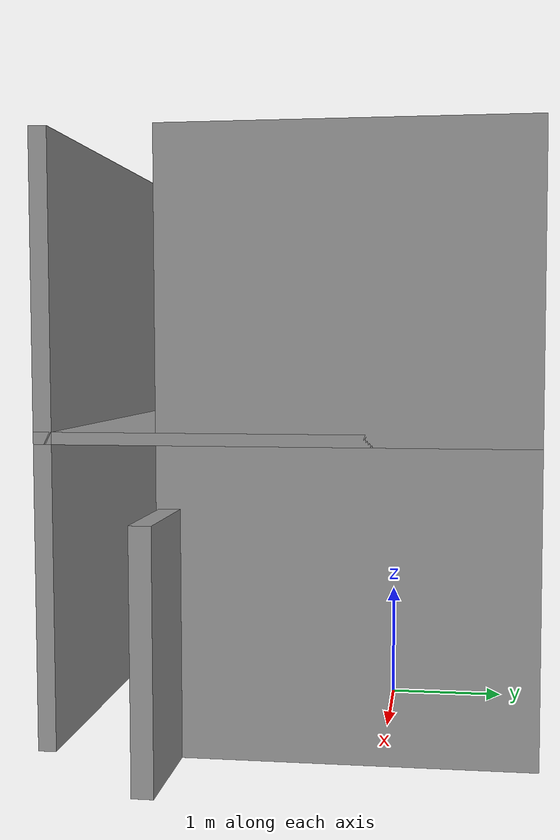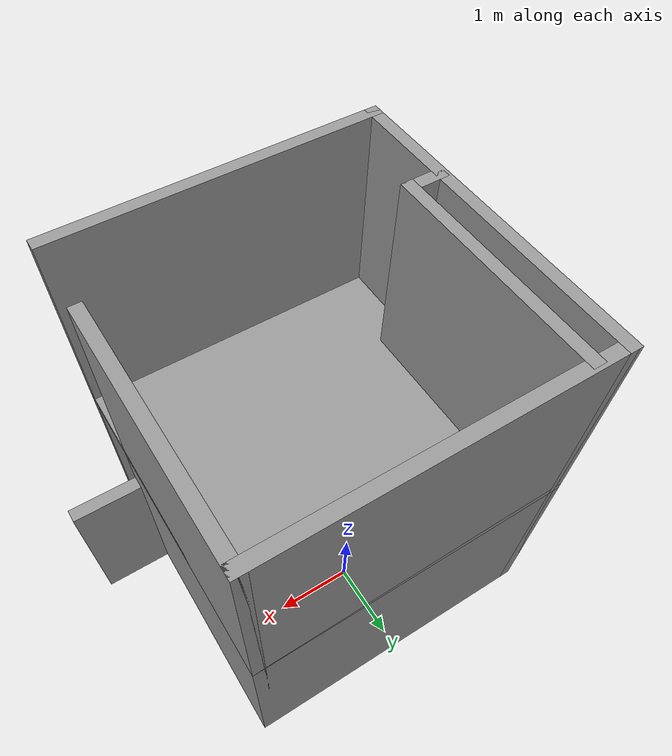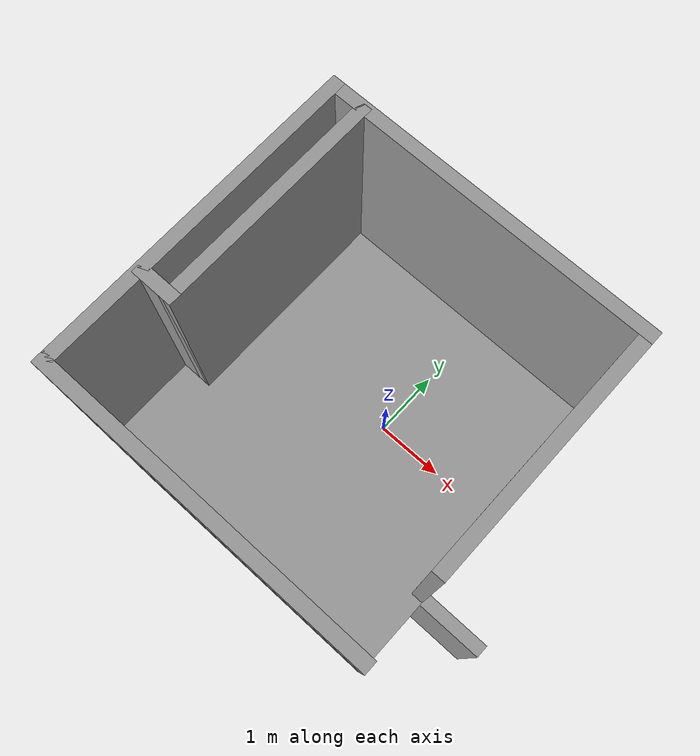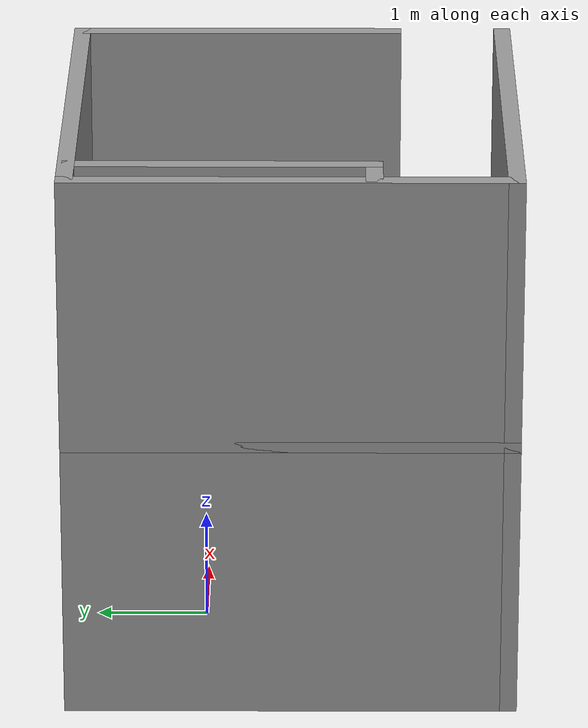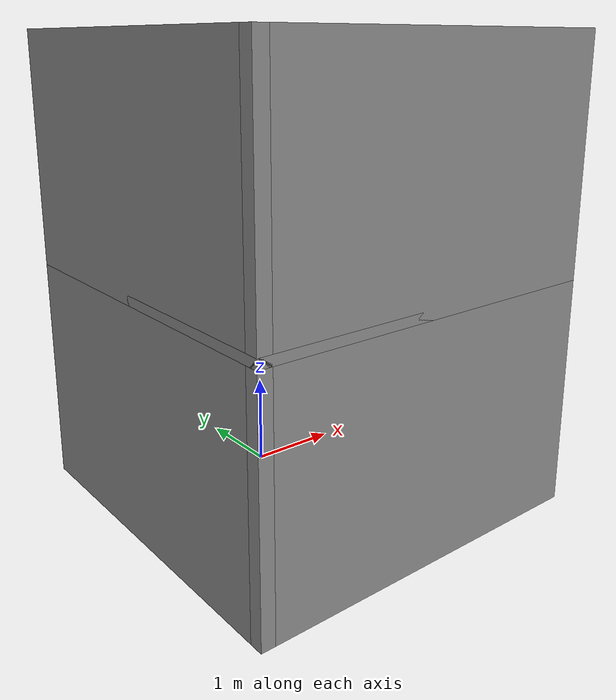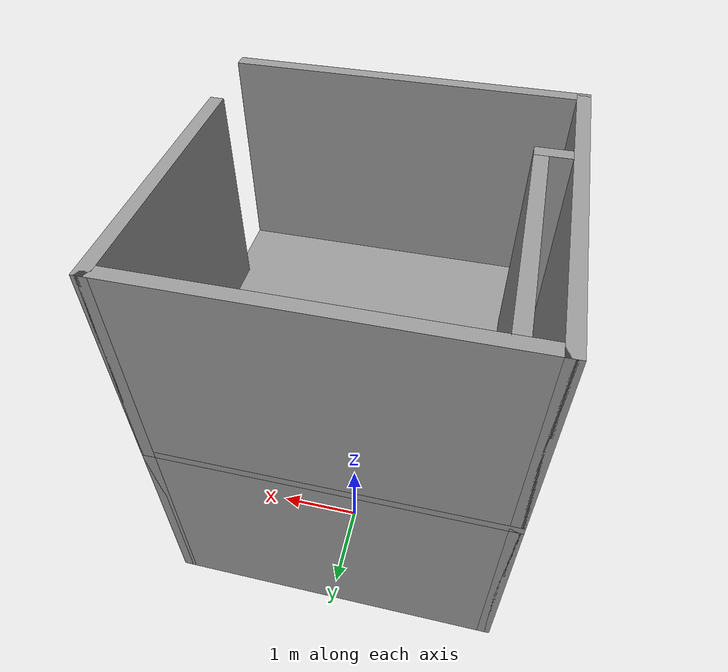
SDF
<?xml version='1.0'?>
<sdf version='1.6'>
  <model name='room-1'>
    <pose frame=''>0.005 -0.773696 0 0 -0 0</pose>
    <link name='Door_0'>
      <collision name='Door_0_Collision'>
        <geometry>
          <box>
            <size>0.9 0.17 2</size>
          </box>
        </geometry>
        <pose frame=''>0 0 1 0 -0 0</pose>
      </collision>
      <visual name='Door_0_Visual'>
        <pose frame=''>0 0 1 0 -0 0</pose>
        <geometry>
          <box>
            <size>0.9 0.17 2</size>
          </box>
        </geometry>
        <material>
          <script>
            <uri>file://media/materials/scripts/gazebo.material</uri>
            <name>Gazebo/Grey</name>
          </script>
        </material>
      </visual>
      <pose frame=''>2.42861 -0.890006 0 0 -0 0</pose>
    </link>
    <link name='Floor_0'>
      <collision name='Floor_0_Collision'>
        <geometry>
          <box>
            <size>4 4 0.1</size>
          </box>
        </geometry>
        <pose frame=''>0 0 0.05 0 -0 0</pose>
      </collision>
      <visual name='Floor_0_Visual'>
        <pose frame=''>0 0 0.05 0 -0 0</pose>
        <geometry>
          <box>
            <size>4 4 0.1</size>
          </box>
        </geometry>
        <material>
          <script>
            <uri>file://media/materials/scripts/gazebo.material</uri>
            <name>Gazebo/Grey</name>
          </script>
          <ambient>1 1 1 1</ambient>
        </material>
      </visual>
      <pose frame=''>0 0 2.5 0 -0 0</pose>
    </link>
    <link name='Wall_10'>
      <collision name='Wall_10_Collision'>
        <geometry>
          <box>
            <size>3 0.15 2.5</size>
          </box>
        </geometry>
        <pose frame=''>0 0 1.25 0 -0 0</pose>
      </collision>
      <visual name='Wall_10_Visual'>
        <pose frame=''>0 0 1.25 0 -0 0</pose>
        <geometry>
          <box>
            <size>3 0.15 2.5</size>
          </box>
        </geometry>
        <material>
          <script>
            <uri>file://media/materials/scripts/gazebo.material</uri>
            <name>Gazebo/Grey</name>
          </script>
          <ambient>1 1 1 1</ambient>
        </material>
      </visual>
      <pose frame=''>1.925 0.5 0 0 0 -1.5708</pose>
    </link>
    <link name='Wall_12'>
      <collision name='Wall_12_Collision'>
        <geometry>
          <box>
            <size>4 0.15 2.5</size>
          </box>
        </geometry>
        <pose frame=''>0 0 1.25 0 -0 0</pose>
      </collision>
      <visual name='Wall_12_Visual'>
        <pose frame=''>0 0 1.25 0 -0 0</pose>
        <geometry>
          <box>
            <size>4 0.15 2.5</size>
          </box>
        </geometry>
        <material>
          <script>
            <uri>file://media/materials/scripts/gazebo.material</uri>
            <name>Gazebo/Grey</name>
          </script>
          <ambient>1 1 1 1</ambient>
        </material>
      </visual>
      <pose frame=''>0 -1.925 2.5 0 -0 3.14159</pose>
    </link>
    <link name='Wall_13'>
      <collision name='Wall_13_Collision'>
        <geometry>
          <box>
            <size>4 0.15 2.5</size>
          </box>
        </geometry>
        <pose frame=''>0 0 1.25 0 -0 0</pose>
      </collision>
      <visual name='Wall_13_Visual'>
        <pose frame=''>0 0 1.25 0 -0 0</pose>
        <geometry>
          <box>
            <size>4 0.15 2.5</size>
          </box>
        </geometry>
        <material>
          <script>
            <uri>file://media/materials/scripts/gazebo.material</uri>
            <name>Gazebo/Grey</name>
          </script>
          <ambient>1 1 1 1</ambient>
        </material>
      </visual>
      <pose frame=''>-1.925 0 2.5 0 -0 1.5708</pose>
    </link>
    <link name='Wall_14'>
      <collision name='Wall_14_Collision'>
        <geometry>
          <box>
            <size>4 0.15 2.5</size>
          </box>
        </geometry>
        <pose frame=''>0 0 1.25 0 -0 0</pose>
      </collision>
      <visual name='Wall_14_Visual'>
        <pose frame=''>0 0 1.25 0 -0 0</pose>
        <geometry>
          <box>
            <size>4 0.15 2.5</size>
          </box>
        </geometry>
        <material>
          <script>
            <uri>file://media/materials/scripts/gazebo.material</uri>
            <name>Gazebo/Grey</name>
          </script>
          <ambient>1 1 1 1</ambient>
        </material>
      </visual>
      <pose frame=''>0 1.925 2.5 0 -0 0</pose>
    </link>
    <link name='Wall_15'>
      <collision name='Wall_15_Collision'>
        <geometry>
          <box>
            <size>3 0.15 2.5</size>
          </box>
        </geometry>
        <pose frame=''>0 0 1.25 0 -0 0</pose>
      </collision>
      <visual name='Wall_15_Visual'>
        <pose frame=''>0 0 1.25 0 -0 0</pose>
        <geometry>
          <box>
            <size>3 0.15 2.5</size>
          </box>
        </geometry>
        <material>
          <script>
            <uri>file://media/materials/scripts/gazebo.material</uri>
            <name>Gazebo/Grey</name>
          </script>
          <ambient>1 1 1 1</ambient>
        </material>
      </visual>
      <pose frame=''>1.925 0.5 2.5 0 0 -1.5708</pose>
    </link>
    <link name='Wall_17'>
      <collision name='Wall_17_Collision'>
        <geometry>
          <box>
            <size>0.5 0.15 2.5</size>
          </box>
        </geometry>
        <pose frame=''>0 0 1.25 0 -0 0</pose>
      </collision>
      <visual name='Wall_17_Visual'>
        <pose frame=''>0 0 1.25 0 -0 0</pose>
        <geometry>
          <box>
            <size>0.5 0.15 2.5</size>
          </box>
        </geometry>
        <material>
          <script>
            <uri>file://media/materials/scripts/gazebo.material</uri>
            <name>Gazebo/Grey</name>
          </script>
          <ambient>1 1 1 1</ambient>
        </material>
      </visual>
      <pose frame=''>-1.71643 -0.715105 2.5 0 -0 0</pose>
    </link>
    <link name='Wall_18'>
      <collision name='Wall_18_Collision'>
        <geometry>
          <box>
            <size>2.75 0.15 2.5</size>
          </box>
        </geometry>
        <pose frame=''>0 0 1.25 0 -0 0</pose>
      </collision>
      <visual name='Wall_18_Visual'>
        <pose frame=''>0 0 1.25 0 -0 0</pose>
        <geometry>
          <box>
            <size>2.75 0.15 2.5</size>
          </box>
        </geometry>
        <material>
          <script>
            <uri>file://media/materials/scripts/gazebo.material</uri>
            <name>Gazebo/Grey</name>
          </script>
          <ambient>1 1 1 1</ambient>
        </material>
      </visual>
      <pose frame=''>-1.54143 0.584895 2.5 0 -0 1.5708</pose>
    </link>
    <link name='Wall_5'>
      <collision name='Wall_5_Collision'>
        <geometry>
          <box>
            <size>4 0.15 2.5</size>
          </box>
        </geometry>
        <pose frame=''>0 0 1.25 0 -0 0</pose>
      </collision>
      <visual name='Wall_5_Visual'>
        <pose frame=''>0 0 1.25 0 -0 0</pose>
        <geometry>
          <box>
            <size>4 0.15 2.5</size>
          </box>
        </geometry>
        <material>
          <script>
            <uri>file://media/materials/scripts/gazebo.material</uri>
            <name>Gazebo/Grey</name>
          </script>
          <ambient>1 1 1 1</ambient>
        </material>
      </visual>
      <pose frame=''>0 -1.925 0 0 -0 3.14159</pose>
    </link>
    <link name='Wall_7'>
      <collision name='Wall_7_Collision'>
        <geometry>
          <box>
            <size>4 0.15 2.5</size>
          </box>
        </geometry>
        <pose frame=''>0 0 1.25 0 -0 0</pose>
      </collision>
      <visual name='Wall_7_Visual'>
        <pose frame=''>0 0 1.25 0 -0 0</pose>
        <geometry>
          <box>
            <size>4 0.15 2.5</size>
          </box>
        </geometry>
        <material>
          <script>
            <uri>file://media/materials/scripts/gazebo.material</uri>
            <name>Gazebo/Grey</name>
          </script>
          <ambient>1 1 1 1</ambient>
        </material>
      </visual>
      <pose frame=''>-1.925 0 0 0 -0 1.5708</pose>
    </link>
    <link name='Wall_8'>
      <collision name='Wall_8_Collision'>
        <geometry>
          <box>
            <size>4 0.15 2.5</size>
          </box>
        </geometry>
        <pose frame=''>0 0 1.25 0 -0 0</pose>
      </collision>
      <visual name='Wall_8_Visual'>
        <pose frame=''>0 0 1.25 0 -0 0</pose>
        <geometry>
          <box>
            <size>4 0.15 2.5</size>
          </box>
        </geometry>
        <material>
          <script>
            <uri>file://media/materials/scripts/gazebo.material</uri>
            <name>Gazebo/Grey</name>
          </script>
          <ambient>1 1 1 1</ambient>
        </material>
      </visual>
      <pose frame=''>0 1.925 0 0 -0 0</pose>
    </link>
    <static>1</static>
  </model>
</sdf>
